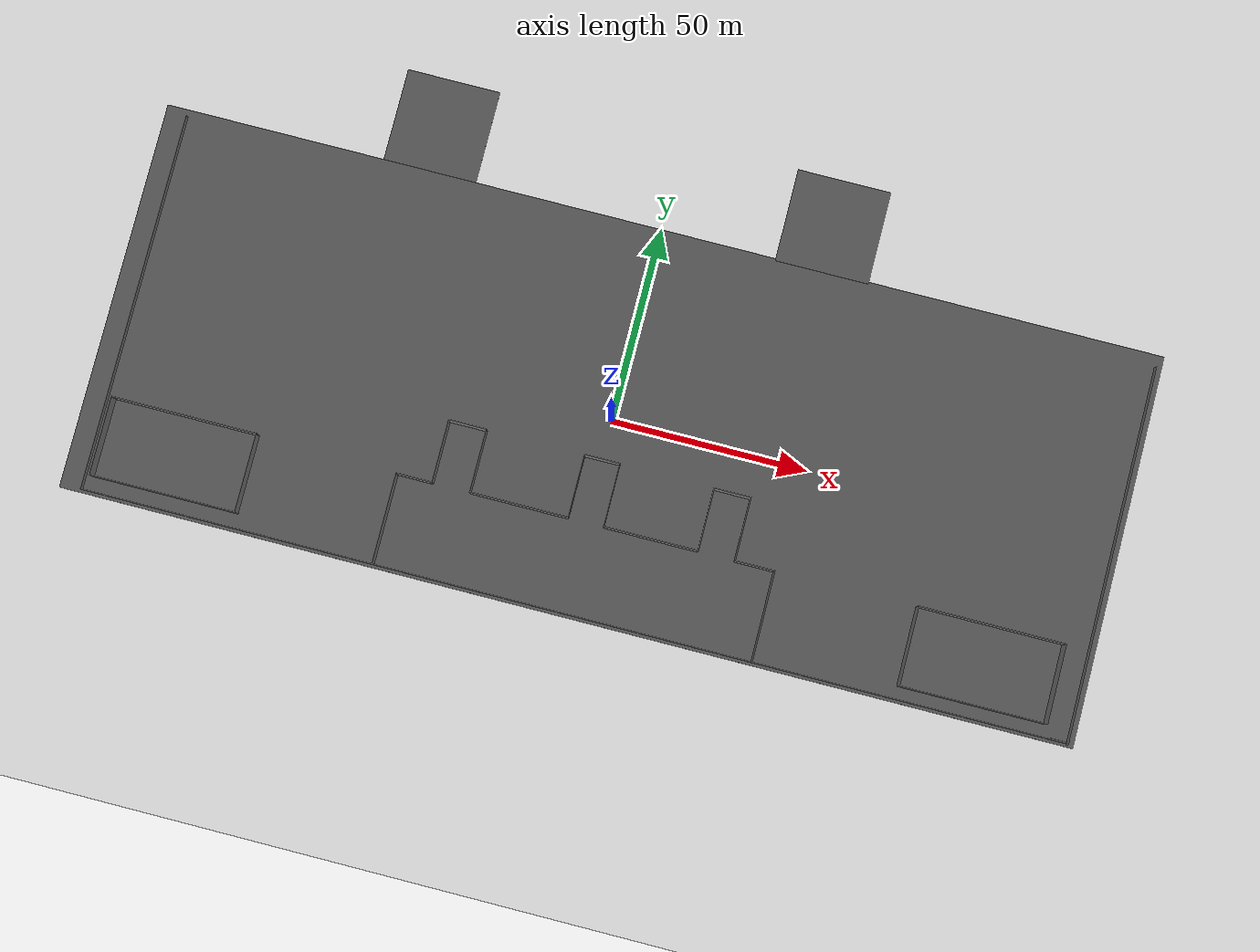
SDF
<sdf version="1.7">
 <world name="default">
  <light name="sun" type="directional">
   <pose>0 0 10 0 -0 0</pose>
   <diffuse>0.8 0.8 0.8 1</diffuse>
   <specular>0.2 0.2 0.2 1</specular>
   <attenuation>
    <range>1000</range>
    <constant>0.9</constant>
    <linear>0.01</linear>
    <quadratic>0.001</quadratic>
   </attenuation>
   <direction>-0.5 0.1 -0.9</direction>
   <spot><inner_angle>0</inner_angle><outer_angle>0</outer_angle><falloff>0</falloff></spot>
  </light>
  <model name="ground_plane">
   <static>1</static>
   <link name="link">
    <collision name="collision">
     <geometry><plane><normal>0 0 1</normal><size>100 100</size></plane></geometry>
     <surface>
      <contact><collide_bitmask>65535</collide_bitmask></contact>
      <friction><ode><mu>100</mu><mu2>50</mu2></ode></friction>
     </surface>
    </collision>
    <visual name="visual">
     <cast_shadows>0</cast_shadows>
     <geometry><plane><normal>0 0 1</normal><size>100 100</size></plane></geometry>
     <material>
      <script><uri>file://media/materials/scripts/gazebo.material</uri><name>Gazebo/Grey</name></script>
     </material>
    </visual>
   </link>
  </model>
  <gravity>0 0 -9.8</gravity>
  <magnetic_field>6e-06 2.3e-05 -4.2e-05</magnetic_field>
  <atmosphere type="adiabatic"/>
  <physics type="ode">
   <max_step_size>0.001</max_step_size>
   <real_time_factor>1</real_time_factor>
   <real_time_update_rate>1000</real_time_update_rate>
  </physics>
  <scene><ambient>0.4 0.4 0.4 1</ambient><background>0.7 0.7 0.7 1</background><shadows>1</shadows></scene>
  <spherical_coordinates>
   <surface_model>EARTH_WGS84</surface_model>
   <latitude_deg>0</latitude_deg>
   <longitude_deg>0</longitude_deg>
   <elevation>0</elevation>
   <heading_deg>0</heading_deg>
  </spherical_coordinates>
  <model name="asphalt_plane">
   <link name="link">
    <inertial>
     <mass>1</mass>
     <inertia><ixx>1</ixx><ixy>0</ixy><ixz>0</ixz><iyy>1</iyy><iyz>0</iyz><izz>1</izz></inertia>
    </inertial>
    <visual name="visual">
     <cast_shadows>0</cast_shadows>
     <geometry><box><size>258 100 0.1</size></box></geometry>
     <material>
      <script>
       <uri>model://asphalt_plane/materials/scripts</uri>
       <uri>model://asphalt_plane/materials/textures</uri>
       <name>vrc/asphalt</name>
      </script>
      <shader type="pixel"><normal_map>__default__</normal_map></shader>
      <ambient>0.5 0.5 0.5 1</ambient>
      <diffuse>0.5 0.5 0.5 1</diffuse>
      <specular>0.2 0.2 0.2 1</specular>
      <emissive>0 0 0 1</emissive>
     </material>
    </visual>
    <collision name="collision">
     <geometry><box><size>20 20 0.1</size></box></geometry>
     <surface>
      <friction>
       <ode><mu>1</mu><mu2>1</mu2><fdir1>0 0 0</fdir1><slip1>0</slip1><slip2>0</slip2></ode>
       <torsional>
        <coefficient>1</coefficient>
        <patch_radius>0</patch_radius>
        <surface_radius>0</surface_radius>
        <use_patch_radius>1</use_patch_radius>
        <ode><slip>0</slip></ode>
       </torsional>
      </friction>
      <bounce><restitution_coefficient>0</restitution_coefficient><threshold>1e+06</threshold></bounce>
      <contact>
       <collide_without_contact>0</collide_without_contact>
       <collide_without_contact_bitmask>1</collide_without_contact_bitmask>
       <collide_bitmask>1</collide_bitmask>
       <ode>
        <soft_cfm>0</soft_cfm>
        <soft_erp>0.2</soft_erp>
        <kp>1e+13</kp>
        <kd>1</kd>
        <max_vel>0.01</max_vel>
        <min_depth>0</min_depth>
       </ode>
       <bullet>
        <split_impulse>1</split_impulse>
        <split_impulse_penetration_threshold>-0.01</split_impulse_penetration_threshold>
        <soft_cfm>0</soft_cfm>
        <soft_erp>0.2</soft_erp>
        <kp>1e+13</kp>
        <kd>1</kd>
       </bullet>
      </contact>
     </surface>
    </collision>
   </link>
   <static>1</static>
   <pose>0.415717 -0.00268 0 0 -0 0</pose>
  </model>
  <model name="walls">
   <pose>2.50427 -0.749483 0 0 -0 0</pose>
   <link name="Wall_31">
    <collision name="Wall_31_Collision">
     <geometry><box><size>161.75 0.15 2.5</size></box></geometry>
     <pose>0 0 1.25 0 -0 0</pose>
    </collision>
    <visual name="Wall_31_Visual">
     <pose>0 0 1.25 0 -0 0</pose>
     <geometry><box><size>161.75 0.15 2.5</size></box></geometry>
     <material>
      <script><uri>file://media/materials/scripts/gazebo.material</uri><name>Gazebo/Grey</name></script>
      <ambient>1 1 1 1</ambient>
     </material>
     <meta><layer>0</layer></meta>
    </visual>
    <pose>43.7075 -48.405 0 0 -0 0</pose>
   </link>
   <link name="Wall_33">
    <collision name="Wall_33_Collision">
     <geometry><box><size>96.25 0.15 2.5</size></box></geometry>
     <pose>0 0 1.25 0 -0 0</pose>
    </collision>
    <visual name="Wall_33_Visual">
     <pose>0 0 1.25 0 -0 0</pose>
     <geometry><box><size>96.25 0.15 2.5</size></box></geometry>
     <material>
      <script><uri>file://media/materials/scripts/gazebo.material</uri><name>Gazebo/Grey</name></script>
      <ambient>1 1 1 1</ambient>
     </material>
     <meta><layer>0</layer></meta>
    </visual>
    <pose>125.146 -0.660367 0 0 -0 1.5708</pose>
   </link>
   <link name="Wall_35">
    <collision name="Wall_35_Collision">
     <geometry><box><size>4.5 0.15 2.5</size></box></geometry>
     <pose>0 0 1.25 0 -0 0</pose>
    </collision>
    <visual name="Wall_35_Visual">
     <pose>0 0 1.25 0 -0 0</pose>
     <geometry><box><size>4.5 0.15 2.5</size></box></geometry>
     <material>
      <script><uri>file://media/materials/scripts/gazebo.material</uri><name>Gazebo/Grey</name></script>
      <ambient>1 1 1 1</ambient>
     </material>
     <meta><layer>0</layer></meta>
    </visual>
    <pose>123.188 -48.1712 0 0 -0 3.14159</pose>
   </link>
   <link name="Wall_37">
    <collision name="Wall_37_Collision">
     <geometry><box><size>89.25 0.15 2.5</size></box></geometry>
     <pose>0 0 1.25 0 -0 0</pose>
    </collision>
    <visual name="Wall_37_Visual">
     <pose>0 0 1.25 0 -0 0</pose>
     <geometry><box><size>89.25 0.15 2.5</size></box></geometry>
     <material>
      <script><uri>file://media/materials/scripts/gazebo.material</uri><name>Gazebo/Grey</name></script>
      <ambient>1 1 1 1</ambient>
     </material>
     <meta><layer>0</layer></meta>
    </visual>
    <pose>-80.8131 -48.3896 0 0 -0 3.14159</pose>
   </link>
   <link name="Wall_38">
    <collision name="Wall_38_Collision">
     <geometry><box><size>97.25 0.15 2.5</size></box></geometry>
     <pose>0 0 1.25 0 -0 0</pose>
    </collision>
    <visual name="Wall_38_Visual">
     <pose>0 0 1.25 0 -0 0</pose>
     <geometry><box><size>97.25 0.15 2.5</size></box></geometry>
     <material>
      <script><uri>file://media/materials/scripts/gazebo.material</uri><name>Gazebo/Grey</name></script>
      <ambient>1 1 1 1</ambient>
     </material>
     <meta><layer>0</layer></meta>
    </visual>
    <pose>-125.363 0.160366 0 0 -0 1.5708</pose>
   </link>
   <static>1</static>
  </model>
  <model name="terminal">
   <pose>-0.049903 -29.7229 0 0 -0 0</pose>
   <link name="Wall_68">
    <collision name="Wall_68_Collision">
     <geometry><box><size>23 0.15 6</size></box></geometry>
     <pose>0 0 3 0 -0 0</pose>
    </collision>
    <visual name="Wall_68_Visual">
     <pose>0 0 3 0 -0 0</pose>
     <geometry><box><size>23 0.15 6</size></box></geometry>
     <material>
      <script><uri>file://media/materials/scripts/gazebo.material</uri><name>Gazebo/Grey</name></script>
      <ambient>1 1 1 1</ambient>
     </material>
     <meta><layer>0</layer></meta>
    </visual>
    <pose>-47.996 -7.8745 0 0 -0 1.5708</pose>
   </link>
   <link name="Wall_69">
    <collision name="Wall_69_Collision">
     <geometry><box><size>9.25 0.15 6</size></box></geometry>
     <pose>0 0 3 0 -0 0</pose>
    </collision>
    <visual name="Wall_69_Visual">
     <pose>0 0 3 0 -0 0</pose>
     <geometry><box><size>9.25 0.15 6</size></box></geometry>
     <material>
      <script><uri>file://media/materials/scripts/gazebo.material</uri><name>Gazebo/Grey</name></script>
      <ambient>1 1 1 1</ambient>
     </material>
     <meta><layer>0</layer></meta>
    </visual>
    <pose>-43.446 3.5505 0 0 -0 0</pose>
   </link>
   <link name="Wall_70">
    <collision name="Wall_70_Collision">
     <geometry><box><size>16.15 0.15 6</size></box></geometry>
     <pose>0 0 3 0 -0 0</pose>
    </collision>
    <visual name="Wall_70_Visual">
     <pose>0 0 3 0 -0 0</pose>
     <geometry><box><size>16.15 0.15 6</size></box></geometry>
     <material>
      <script><uri>file://media/materials/scripts/gazebo.material</uri><name>Gazebo/Grey</name></script>
      <ambient>1 1 1 1</ambient>
     </material>
     <meta><layer>0</layer></meta>
    </visual>
    <pose>-38.896 11.5505 0 0 -0 1.5708</pose>
   </link>
   <link name="Wall_71">
    <collision name="Wall_71_Collision">
     <geometry><box><size>9.738 0.15 6</size></box></geometry>
     <pose>0 0 3 0 -0 0</pose>
    </collision>
    <visual name="Wall_71_Visual">
     <pose>0 0 3 0 -0 0</pose>
     <geometry><box><size>9.738 0.15 6</size></box></geometry>
     <material>
      <script><uri>file://media/materials/scripts/gazebo.material</uri><name>Gazebo/Grey</name></script>
      <ambient>1 1 1 1</ambient>
     </material>
     <meta><layer>0</layer></meta>
    </visual>
    <pose>-34.102 19.5505 0 0 -0 0</pose>
   </link>
   <link name="Wall_72">
    <collision name="Wall_72_Collision">
     <geometry><box><size>16.15 0.15 6</size></box></geometry>
     <pose>0 0 3 0 -0 0</pose>
    </collision>
    <visual name="Wall_72_Visual">
     <pose>0 0 3 0 -0 0</pose>
     <geometry><box><size>16.15 0.15 6</size></box></geometry>
     <material>
      <script><uri>file://media/materials/scripts/gazebo.material</uri><name>Gazebo/Grey</name></script>
      <ambient>1 1 1 1</ambient>
     </material>
     <meta><layer>0</layer></meta>
    </visual>
    <pose>-29.308 11.5505 0 0 -0 -1.5708</pose>
   </link>
   <link name="Wall_73">
    <collision name="Wall_73_Collision">
     <geometry><box><size>25.15 0.15 6</size></box></geometry>
     <pose>0 0 3 0 -0 0</pose>
    </collision>
    <visual name="Wall_73_Visual">
     <pose>0 0 3 0 -0 0</pose>
     <geometry><box><size>25.15 0.15 6</size></box></geometry>
     <material>
      <script><uri>file://media/materials/scripts/gazebo.material</uri><name>Gazebo/Grey</name></script>
      <ambient>1 1 1 1</ambient>
     </material>
     <meta><layer>0</layer></meta>
    </visual>
    <pose>-16.808 3.5505 0 0 -0 0</pose>
   </link>
   <link name="Wall_74">
    <collision name="Wall_74_Collision">
     <geometry><box><size>16.15 0.15 6</size></box></geometry>
     <pose>0 0 3 0 -0 0</pose>
    </collision>
    <visual name="Wall_74_Visual">
     <pose>0 0 3 0 -0 0</pose>
     <geometry><box><size>16.15 0.15 6</size></box></geometry>
     <material>
      <script><uri>file://media/materials/scripts/gazebo.material</uri><name>Gazebo/Grey</name></script>
      <ambient>1 1 1 1</ambient>
     </material>
     <meta><layer>0</layer></meta>
    </visual>
    <pose>-4.308 11.5505 0 0 -0 1.5708</pose>
   </link>
   <link name="Wall_75">
    <collision name="Wall_75_Collision">
     <geometry><box><size>9.15 0.15 6</size></box></geometry>
     <pose>0 0 3 0 -0 0</pose>
    </collision>
    <visual name="Wall_75_Visual">
     <pose>0 0 3 0 -0 0</pose>
     <geometry><box><size>9.15 0.15 6</size></box></geometry>
     <material>
      <script><uri>file://media/materials/scripts/gazebo.material</uri><name>Gazebo/Grey</name></script>
      <ambient>1 1 1 1</ambient>
     </material>
     <meta><layer>0</layer></meta>
    </visual>
    <pose>0.191999 19.5505 0 0 -0 0</pose>
   </link>
   <link name="Wall_76">
    <collision name="Wall_76_Collision">
     <geometry><box><size>16.15 0.15 6</size></box></geometry>
     <pose>0 0 3 0 -0 0</pose>
    </collision>
    <visual name="Wall_76_Visual">
     <pose>0 0 3 0 -0 0</pose>
     <geometry><box><size>16.15 0.15 6</size></box></geometry>
     <material>
      <script><uri>file://media/materials/scripts/gazebo.material</uri><name>Gazebo/Grey</name></script>
      <ambient>1 1 1 1</ambient>
     </material>
     <meta><layer>0</layer></meta>
    </visual>
    <pose>4.692 11.5505 0 0 -0 -1.5708</pose>
   </link>
   <link name="Wall_77">
    <collision name="Wall_77_Collision">
     <geometry><box><size>24.15 0.15 6</size></box></geometry>
     <pose>0 0 3 0 -0 0</pose>
    </collision>
    <visual name="Wall_77_Visual">
     <pose>0 0 3 0 -0 0</pose>
     <geometry><box><size>24.15 0.15 6</size></box></geometry>
     <material>
      <script><uri>file://media/materials/scripts/gazebo.material</uri><name>Gazebo/Grey</name></script>
      <ambient>1 1 1 1</ambient>
     </material>
     <meta><layer>0</layer></meta>
    </visual>
    <pose>16.692 3.5505 0 0 -0 0</pose>
   </link>
   <link name="Wall_78">
    <collision name="Wall_78_Collision">
     <geometry><box><size>16.049 0.15 6</size></box></geometry>
     <pose>0 0 3 0 -0 0</pose>
    </collision>
    <visual name="Wall_78_Visual">
     <pose>0 0 3 0 -0 0</pose>
     <geometry><box><size>16.049 0.15 6</size></box></geometry>
     <material>
      <script><uri>file://media/materials/scripts/gazebo.material</uri><name>Gazebo/Grey</name></script>
      <ambient>1 1 1 1</ambient>
     </material>
     <meta><layer>0</layer></meta>
    </visual>
    <pose>28.692 11.5 0 0 -0 1.5708</pose>
   </link>
   <link name="Wall_79">
    <collision name="Wall_79_Collision">
     <geometry><box><size>9.454 0.15 6</size></box></geometry>
     <pose>0 0 3 0 -0 0</pose>
    </collision>
    <visual name="Wall_79_Visual">
     <pose>0 0 3 0 -0 0</pose>
     <geometry><box><size>9.454 0.15 6</size></box></geometry>
     <material>
      <script><uri>file://media/materials/scripts/gazebo.material</uri><name>Gazebo/Grey</name></script>
      <ambient>1 1 1 1</ambient>
     </material>
     <meta><layer>0</layer></meta>
    </visual>
    <pose>33.344 19.4495 0 0 -0 0</pose>
   </link>
   <link name="Wall_80">
    <collision name="Wall_80_Collision">
     <geometry><box><size>16.15 0.15 6</size></box></geometry>
     <pose>0 0 3 0 -0 0</pose>
    </collision>
    <visual name="Wall_80_Visual">
     <pose>0 0 3 0 -0 0</pose>
     <geometry><box><size>16.15 0.15 6</size></box></geometry>
     <material>
      <script><uri>file://media/materials/scripts/gazebo.material</uri><name>Gazebo/Grey</name></script>
      <ambient>1 1 1 1</ambient>
     </material>
     <meta><layer>0</layer></meta>
    </visual>
    <pose>37.996 11.4495 0 0 -0 -1.5708</pose>
   </link>
   <link name="Wall_81">
    <collision name="Wall_81_Collision">
     <geometry><box><size>10.15 0.15 6</size></box></geometry>
     <pose>0 0 3 0 -0 0</pose>
    </collision>
    <visual name="Wall_81_Visual">
     <pose>0 0 3 0 -0 0</pose>
     <geometry><box><size>10.15 0.15 6</size></box></geometry>
     <material>
      <script><uri>file://media/materials/scripts/gazebo.material</uri><name>Gazebo/Grey</name></script>
      <ambient>1 1 1 1</ambient>
     </material>
     <meta><layer>0</layer></meta>
    </visual>
    <pose>42.996 3.4495 0 0 -0 0</pose>
   </link>
   <link name="Wall_82">
    <collision name="Wall_82_Collision">
     <geometry><box><size>23.15 0.15 6</size></box></geometry>
     <pose>0 0 3 0 -0 0</pose>
    </collision>
    <visual name="Wall_82_Visual">
     <pose>0 0 3 0 -0 0</pose>
     <geometry><box><size>23.15 0.15 6</size></box></geometry>
     <material>
      <script><uri>file://media/materials/scripts/gazebo.material</uri><name>Gazebo/Grey</name></script>
      <ambient>1 1 1 1</ambient>
     </material>
     <meta><layer>0</layer></meta>
    </visual>
    <pose>47.996 -8.0505 0 0 -0 -1.5708</pose>
   </link>
   <static>1</static>
  </model>
  <model name="building">
   <pose>-60.9706 -22.8843 0 0 -0 0</pose>
   <link name="Wall_49">
    <collision name="Wall_49_Collision">
     <geometry><box><size>0.15 0.15 6</size></box></geometry>
     <pose>0 0 3 0 -0 0</pose>
    </collision>
    <visual name="Wall_49_Visual">
     <pose>0 0 3 0 -0 0</pose>
     <geometry><box><size>0.15 0.15 6</size></box></geometry>
     <material>
      <script><uri>file://media/materials/scripts/gazebo.material</uri><name>Gazebo/Grey</name></script>
      <ambient>1 1 1 1</ambient>
     </material>
     <meta><layer>0</layer></meta>
    </visual>
    <pose>-59.9625 -2.4625 0 0 -0 0</pose>
   </link>
   <link name="Wall_50">
    <collision name="Wall_50_Collision">
     <geometry><box><size>20.15 0.15 6</size></box></geometry>
     <pose>0 0 3 0 -0 0</pose>
    </collision>
    <visual name="Wall_50_Visual">
     <pose>0 0 3 0 -0 0</pose>
     <geometry><box><size>20.15 0.15 6</size></box></geometry>
     <material>
      <script><uri>file://media/materials/scripts/gazebo.material</uri><name>Gazebo/Grey</name></script>
      <ambient>1 1 1 1</ambient>
     </material>
     <meta><layer>0</layer></meta>
    </visual>
    <pose>-59.9625 -12.4625 0 0 -0 -1.5708</pose>
   </link>
   <link name="Wall_51">
    <collision name="Wall_51_Collision">
     <geometry><box><size>37.15 0.15 6</size></box></geometry>
     <pose>0 0 3 0 -0 0</pose>
    </collision>
    <visual name="Wall_51_Visual">
     <pose>0 0 3 0 -0 0</pose>
     <geometry><box><size>37.15 0.15 6</size></box></geometry>
     <material>
      <script><uri>file://media/materials/scripts/gazebo.material</uri><name>Gazebo/Grey</name></script>
      <ambient>1 1 1 1</ambient>
     </material>
     <meta><layer>0</layer></meta>
    </visual>
    <pose>-41.4625 -22.4625 0 0 -0 0</pose>
   </link>
   <link name="Wall_52">
    <collision name="Wall_52_Collision">
     <geometry><box><size>20.15 0.15 6</size></box></geometry>
     <pose>0 0 3 0 -0 0</pose>
    </collision>
    <visual name="Wall_52_Visual">
     <pose>0 0 3 0 -0 0</pose>
     <geometry><box><size>20.15 0.15 6</size></box></geometry>
     <material>
      <script><uri>file://media/materials/scripts/gazebo.material</uri><name>Gazebo/Grey</name></script>
      <ambient>1 1 1 1</ambient>
     </material>
     <meta><layer>0</layer></meta>
    </visual>
    <pose>-22.9625 -12.4625 0 0 -0 1.5708</pose>
   </link>
   <link name="Wall_66">
    <collision name="Wall_66_Collision">
     <geometry><box><size>37.15 0.15 6</size></box></geometry>
     <pose>0 0 3 0 -0 0</pose>
    </collision>
    <visual name="Wall_66_Visual">
     <pose>0 0 3 0 -0 0</pose>
     <geometry><box><size>37.15 0.15 6</size></box></geometry>
     <material>
      <script><uri>file://media/materials/scripts/gazebo.material</uri><name>Gazebo/Grey</name></script>
      <ambient>1 1 1 1</ambient>
     </material>
     <meta><layer>0</layer></meta>
    </visual>
    <pose>-41.4625 -2.4625 0 0 -0 0</pose>
   </link>
   <static>1</static>
  </model>
  <model name="building_0">
   <pose>144.041 -23.408 0 0 -0 0</pose>
   <link name="Wall_49">
    <collision name="Wall_49_Collision">
     <geometry><box><size>0.15 0.15 6</size></box></geometry>
     <pose>0 0 3 0 -0 0</pose>
    </collision>
    <visual name="Wall_49_Visual">
     <pose>0 0 3 0 -0 0</pose>
     <geometry><box><size>0.15 0.15 6</size></box></geometry>
     <material>
      <script><uri>file://media/materials/scripts/gazebo.material</uri><name>Gazebo/Grey</name></script>
      <ambient>1 1 1 1</ambient>
     </material>
     <meta><layer>0</layer></meta>
    </visual>
    <pose>-59.9625 -2.4625 0 0 -0 0</pose>
   </link>
   <link name="Wall_50">
    <collision name="Wall_50_Collision">
     <geometry><box><size>20.15 0.15 6</size></box></geometry>
     <pose>0 0 3 0 -0 0</pose>
    </collision>
    <visual name="Wall_50_Visual">
     <pose>0 0 3 0 -0 0</pose>
     <geometry><box><size>20.15 0.15 6</size></box></geometry>
     <material>
      <script><uri>file://media/materials/scripts/gazebo.material</uri><name>Gazebo/Grey</name></script>
      <ambient>1 1 1 1</ambient>
     </material>
     <meta><layer>0</layer></meta>
    </visual>
    <pose>-59.9625 -12.4625 0 0 -0 -1.5708</pose>
   </link>
   <link name="Wall_51">
    <collision name="Wall_51_Collision">
     <geometry><box><size>37.15 0.15 6</size></box></geometry>
     <pose>0 0 3 0 -0 0</pose>
    </collision>
    <visual name="Wall_51_Visual">
     <pose>0 0 3 0 -0 0</pose>
     <geometry><box><size>37.15 0.15 6</size></box></geometry>
     <material>
      <script><uri>file://media/materials/scripts/gazebo.material</uri><name>Gazebo/Grey</name></script>
      <ambient>1 1 1 1</ambient>
     </material>
     <meta><layer>0</layer></meta>
    </visual>
    <pose>-41.4625 -22.4625 0 0 -0 0</pose>
   </link>
   <link name="Wall_52">
    <collision name="Wall_52_Collision">
     <geometry><box><size>20.15 0.15 6</size></box></geometry>
     <pose>0 0 3 0 -0 0</pose>
    </collision>
    <visual name="Wall_52_Visual">
     <pose>0 0 3 0 -0 0</pose>
     <geometry><box><size>20.15 0.15 6</size></box></geometry>
     <material>
      <script><uri>file://media/materials/scripts/gazebo.material</uri><name>Gazebo/Grey</name></script>
      <ambient>1 1 1 1</ambient>
     </material>
     <meta><layer>0</layer></meta>
    </visual>
    <pose>-22.9625 -12.4625 0 0 -0 1.5708</pose>
   </link>
   <link name="Wall_66">
    <collision name="Wall_66_Collision">
     <geometry><box><size>37.15 0.15 6</size></box></geometry>
     <pose>0 0 3 0 -0 0</pose>
    </collision>
    <visual name="Wall_66_Visual">
     <pose>0 0 3 0 -0 0</pose>
     <geometry><box><size>37.15 0.15 6</size></box></geometry>
     <material>
      <script><uri>file://media/materials/scripts/gazebo.material</uri><name>Gazebo/Grey</name></script>
      <ambient>1 1 1 1</ambient>
     </material>
     <meta><layer>0</layer></meta>
    </visual>
    <pose>-41.4625 -2.4625 0 0 -0 0</pose>
   </link>
   <static>1</static>
  </model>
  <model name="asphalt_plane_0">
   <link name="link">
    <inertial>
     <mass>1</mass>
     <inertia><ixx>1</ixx><ixy>0</ixy><ixz>0</ixz><iyy>1</iyy><iyz>0</iyz><izz>1</izz></inertia>
    </inertial>
    <visual name="visual">
     <cast_shadows>0</cast_shadows>
     <geometry><box><size>24 24 0.1</size></box></geometry>
     <material>
      <script>
       <uri>model://asphalt_plane/materials/scripts</uri>
       <uri>model://asphalt_plane/materials/textures</uri>
       <name>vrc/asphalt</name>
      </script>
      <shader type="pixel"><normal_map>__default__</normal_map></shader>
      <ambient>0.5 0.5 0.5 1</ambient>
      <diffuse>0.5 0.5 0.5 1</diffuse>
      <specular>0.2 0.2 0.2 1</specular>
      <emissive>0 0 0 1</emissive>
     </material>
    </visual>
    <collision name="collision">
     <geometry><box><size>20 20 0.1</size></box></geometry>
     <surface>
      <friction>
       <ode><mu>1</mu><mu2>1</mu2><fdir1>0 0 0</fdir1><slip1>0</slip1><slip2>0</slip2></ode>
       <torsional>
        <coefficient>1</coefficient>
        <patch_radius>0</patch_radius>
        <surface_radius>0</surface_radius>
        <use_patch_radius>1</use_patch_radius>
        <ode><slip>0</slip></ode>
       </torsional>
      </friction>
      <bounce><restitution_coefficient>0</restitution_coefficient><threshold>1e+06</threshold></bounce>
      <contact>
       <collide_without_contact>0</collide_without_contact>
       <collide_without_contact_bitmask>1</collide_without_contact_bitmask>
       <collide_bitmask>1</collide_bitmask>
       <ode>
        <soft_cfm>0</soft_cfm>
        <soft_erp>0.2</soft_erp>
        <kp>1e+13</kp>
        <kd>1</kd>
        <max_vel>0.01</max_vel>
        <min_depth>0</min_depth>
       </ode>
       <bullet>
        <split_impulse>1</split_impulse>
        <split_impulse_penetration_threshold>-0.01</split_impulse_penetration_threshold>
        <soft_cfm>0</soft_cfm>
        <soft_erp>0.2</soft_erp>
        <kp>1e+13</kp>
        <kd>1</kd>
       </bullet>
      </contact>
     </surface>
    </collision>
   </link>
   <static>1</static>
   <pose>-60.1731 61.9026 0 0 -0 0</pose>
  </model>
  <model name="asphalt_plane_0_0">
   <link name="link">
    <inertial>
     <mass>1</mass>
     <inertia><ixx>1</ixx><ixy>0</ixy><ixz>0</ixz><iyy>1</iyy><iyz>0</iyz><izz>1</izz></inertia>
    </inertial>
    <visual name="visual">
     <cast_shadows>0</cast_shadows>
     <geometry><box><size>24 24 0.1</size></box></geometry>
     <material>
      <script>
       <uri>model://asphalt_plane/materials/scripts</uri>
       <uri>model://asphalt_plane/materials/textures</uri>
       <name>vrc/asphalt</name>
      </script>
      <shader type="pixel"><normal_map>__default__</normal_map></shader>
      <ambient>0.5 0.5 0.5 1</ambient>
      <diffuse>0.5 0.5 0.5 1</diffuse>
      <specular>0.2 0.2 0.2 1</specular>
      <emissive>0 0 0 1</emissive>
     </material>
    </visual>
    <collision name="collision">
     <geometry><box><size>20 20 0.1</size></box></geometry>
     <surface>
      <friction>
       <ode><mu>1</mu><mu2>1</mu2><fdir1>0 0 0</fdir1><slip1>0</slip1><slip2>0</slip2></ode>
       <torsional>
        <coefficient>1</coefficient>
        <patch_radius>0</patch_radius>
        <surface_radius>0</surface_radius>
        <use_patch_radius>1</use_patch_radius>
        <ode><slip>0</slip></ode>
       </torsional>
      </friction>
      <bounce><restitution_coefficient>0</restitution_coefficient><threshold>1e+06</threshold></bounce>
      <contact>
       <collide_without_contact>0</collide_without_contact>
       <collide_without_contact_bitmask>1</collide_without_contact_bitmask>
       <collide_bitmask>1</collide_bitmask>
       <ode>
        <soft_cfm>0</soft_cfm>
        <soft_erp>0.2</soft_erp>
        <kp>1e+13</kp>
        <kd>1</kd>
        <max_vel>0.01</max_vel>
        <min_depth>0</min_depth>
       </ode>
       <bullet>
        <split_impulse>1</split_impulse>
        <split_impulse_penetration_threshold>-0.01</split_impulse_penetration_threshold>
        <soft_cfm>0</soft_cfm>
        <soft_erp>0.2</soft_erp>
        <kp>1e+13</kp>
        <kd>1</kd>
       </bullet>
      </contact>
     </surface>
    </collision>
   </link>
   <static>1</static>
   <pose>41.541 61.4925 0 0 -0 0</pose>
  </model>
 </world>
</sdf>
